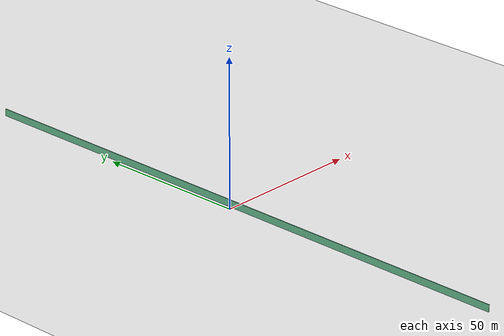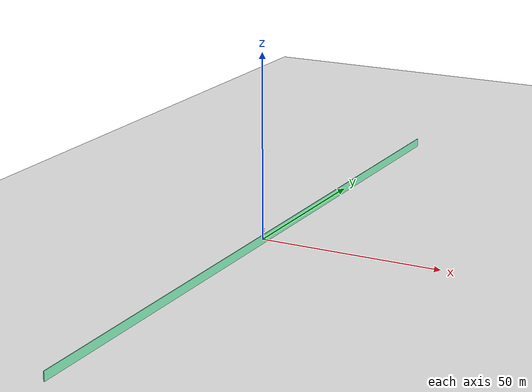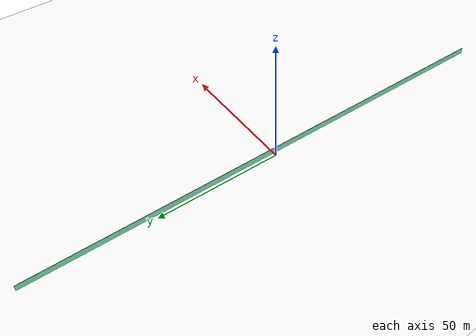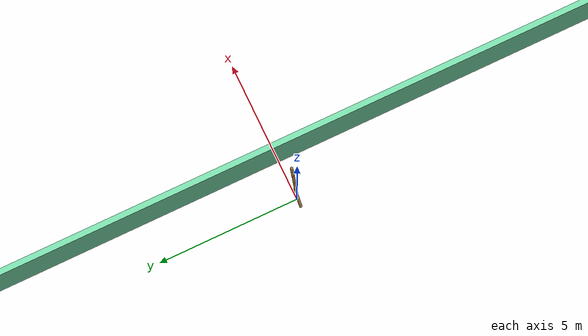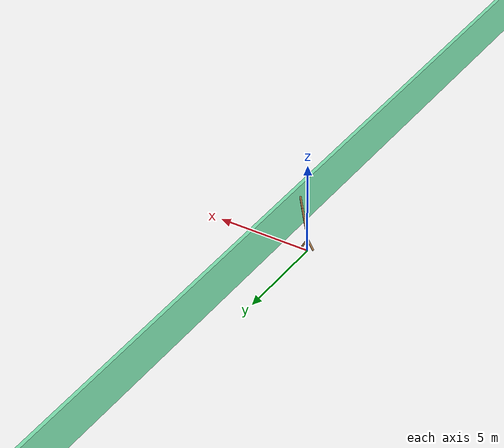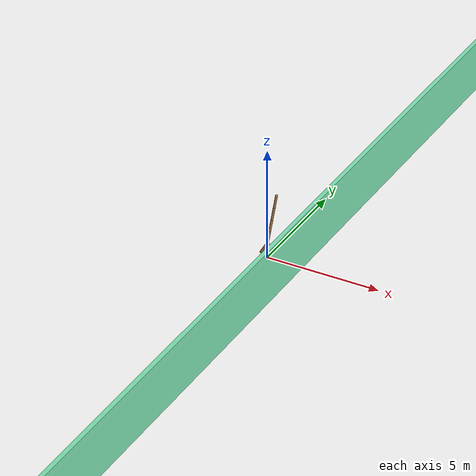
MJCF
<mujoco model="walker">
  <asset>
    <texture name="skybox" type="skybox" builtin="gradient" rgb1=".2 .3 .4" rgb2="0 0 0" width="800" height="800" mark="random" markrgb="1 1 1"/>
    <texture name="grid" type="2d" builtin="checker" rgb1=".1 .2 .3" rgb2=".2 .3 .4" width="300" height="300" mark="edge" markrgb=".2 .3 .4"/>
    <material name="grid" texture="grid" texrepeat="1 1" texuniform="true" reflectance=".2"/>
    <material name="self" rgba=".7 .5 .3 1"/>
  </asset>
  <visual>
    <headlight ambient=".4 .4 .4" diffuse=".8 .8 .8" specular="0.1 0.1 0.1"/>
    <map znear=".001"/>
    <quality shadowsize="16384"/>
  </visual>
  <compiler angle="degree" coordinate="global" inertiafromgeom="true"/>
  <default>
    <joint armature="1" damping="1" limited="true"/>
    <geom conaffinity="0" condim="1" margin="0.001" solimp=".8 .8 .01" solref=".02 1" rgba=".7 .5 .3 1"/>
    <motor ctrllimited="true" ctrlrange="-.4 .4"/>
  </default>
  <option integrator="RK4" timestep="0.002"/>
  <worldbody>
    <light cutoff="100" diffuse="1 1 1" dir="0 -0.3 -1.3" directional="true" exponent="1" pos="0 30 130" specular=".1 .1 .1"/>
    <geom conaffinity="1" condim="3" name="floor" pos="0 0 0" rgba="1 1 1 1" size="200 200 .125" type="plane" material="grid"/>
    <geom conaffinity="1" condim="3" name="wall_box" type="box" pos="1.5 0 1.2" size="0.1 100 1.2" rgba="0.5 0.9 0.7 1" />
    <body name="0" pos="0 0 0.4">
      <camera name="track" mode="trackcom" pos="0 -3 1" xyaxes="1 0 0 0 0 1"/>
      <joint armature="0" axis="1 0 0" damping="0" limited="false" name="rootx" pos="0 0 0" stiffness="0" type="slide"/>
      <joint armature="0" axis="0 0 1" damping="0" limited="false" name="rootz" pos="0 0 0" ref="0.4" stiffness="0" type="slide"/>
      <joint armature="0" axis="0 1 0" damping="0" limited="false" name="0_joint" pos="0 0 0.4" stiffness="0" type="hinge"/>
      <geom friction="0.9" fromto="-0.3 0 0.1803848 0 0 0.7" size="0.05" type="capsule"/>
      <body name="1" pos="0 0 0.7">
        <joint name="1_joint" type="hinge" axis="0 1 0" pos="0 0 0.7" range="-150 150"/>
        <geom friction="0.9" fromto="0 0 0.7 0.104189 0. 1.29088" size="0.05" type="capsule"/>
        <body name="11" pos="0.104189 0. 1.29088">
          <joint name="11_joint" type="hinge" axis="0 1 0" pos="0.104189 0. 1.29088" range="-150 150"/>
          <geom friction="0.9" fromto="0.104189 0. 1.29088 0.208378 0. 1.88177" size="0.05" type="capsule"/>
          <body name="111" pos="0.208378 0. 1.88177">
            <joint name="111_joint" type="hinge" axis="0 1 0" pos="0.208378 0. 1.88177" range="-150 150"/>
            <geom friction="0.9" fromto="0.208378 0. 1.88177 0.312567 0. 2.47265" size="0.05" type="capsule"/>
            <body name="1111" pos="0.312567 0. 2.47265">
              <joint name="1111_joint" type="hinge" axis="0 1 0" pos="0.312567 0. 2.47265" range="-150 150"/>
              <geom friction="0.9" fromto="0.312567 0. 2.47265 0.416756 0. 3.06354" size="0.05" type="capsule"/>
            </body>
          </body>
        </body>
      </body>
      <body name="2" pos="0 0 0.7">
        <joint name="2_joint" type="hinge" axis="0 1 0" pos="0 0 0.7" range="-150 150"/>
        <geom friction="0.9" fromto="0 0 0.7 0.3 0 0.1803848" size="0.05" type="capsule"/>
      </body>
    </body>
  </worldbody>
  <actuator>
    <motor ctrllimited="true" ctrlrange="-1.0 1.0" gear="200" joint="1_joint" name="1_joint"/>
    <motor ctrllimited="true" ctrlrange="-1.0 1.0" gear="200" joint="11_joint" name="11_joint"/>
    <motor ctrllimited="true" ctrlrange="-1.0 1.0" gear="200" joint="111_joint" name="111_joint"/>
    <motor ctrllimited="true" ctrlrange="-1.0 1.0" gear="200" joint="1111_joint" name="1111_joint"/>
    <motor ctrllimited="true" ctrlrange="-1.0 1.0" gear="200" joint="2_joint" name="2_joint"/>
  </actuator>
</mujoco>
